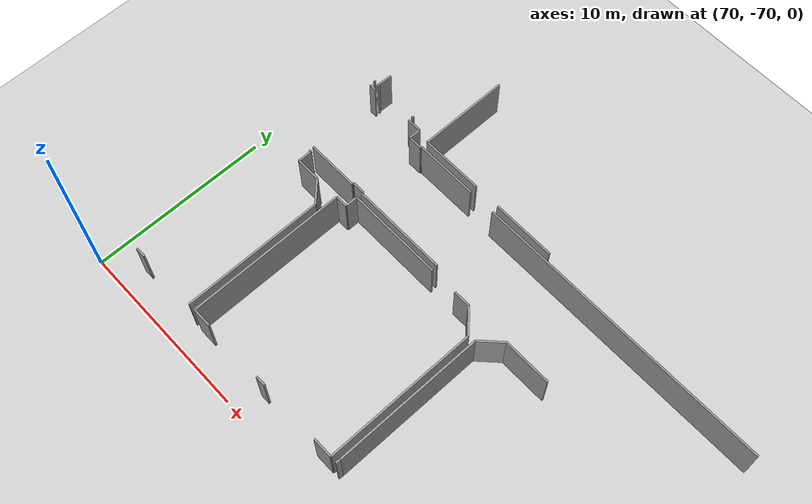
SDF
<sdf version="1.6">
 <world name="default">
  <model name="ground_plane">
   <static>1</static>
   <link name="link">
    <collision name="collision">
     <geometry><plane><normal>0 0 1</normal><size>100 100</size></plane></geometry>
     <surface><friction><ode><mu>100</mu><mu2>50</mu2></ode></friction></surface>
    </collision>
    <visual name="visual">
     <cast_shadows>0</cast_shadows>
     <geometry><plane><normal>0 0 1</normal><size>100 100</size></plane></geometry>
     <material>
      <script><uri>file://media/materials/scripts/gazebo.material</uri><name>Gazebo/Grey</name></script>
     </material>
    </visual>
   </link>
  </model>
  <model name="0510035520_A_40_1_103">
   <static>1</static>
   <link name="Wall_983">
    <collision name="Wall_983_Collision">
     <geometry><box><size>0.114466278767 0.1 2.5</size></box></geometry>
     <pose>0.0572331393836 0 1.25 0 0 0</pose>
    </collision>
    <visual name="Wall_983_Visual">
     <pose>0.0572331393836 0 1.25 0 0 0</pose>
     <geometry><box><size>0.114466278767 0.1 2.5</size></box></geometry>
     <material>
      <script><uri>file://media/materials/scripts/gazebo.material</uri><name>Gazebo/Grey</name></script>
      <ambient>1 1 1 1</ambient>
     </material>
    </visual>
    <pose>185.551106909 -127.543860762 0 0 0 0.0</pose>
   </link>
   <link name="Wall_984">
    <collision name="Wall_984_Collision">
     <geometry><box><size>0.788319871067 0.1 2.5</size></box></geometry>
     <pose>0.394159935533 0 1.25 0 0 0</pose>
    </collision>
    <visual name="Wall_984_Visual">
     <pose>0.394159935533 0 1.25 0 0 0</pose>
     <geometry><box><size>0.788319871067 0.1 2.5</size></box></geometry>
     <material>
      <script><uri>file://media/materials/scripts/gazebo.material</uri><name>Gazebo/Grey</name></script>
      <ambient>1 1 1 1</ambient>
     </material>
    </visual>
    <pose>185.665573188 -127.543860762 0 0 0 -1.57079632679</pose>
   </link>
   <link name="Wall_985">
    <collision name="Wall_985_Collision">
     <geometry><box><size>1.38349375956 0.1 2.5</size></box></geometry>
     <pose>0.691746879779 0 1.25 0 0 0</pose>
    </collision>
    <visual name="Wall_985_Visual">
     <pose>0.691746879779 0 1.25 0 0 0</pose>
     <geometry><box><size>1.38349375956 0.1 2.5</size></box></geometry>
     <material>
      <script><uri>file://media/materials/scripts/gazebo.material</uri><name>Gazebo/Grey</name></script>
      <ambient>1 1 1 1</ambient>
     </material>
    </visual>
    <pose>185.665573188 -128.332180633 0 0 0 0.0</pose>
   </link>
   <link name="Wall_986">
    <collision name="Wall_986_Collision">
     <geometry><box><size>1.47938921712 0.1 2.5</size></box></geometry>
     <pose>0.739694608561 0 1.25 0 0 0</pose>
    </collision>
    <visual name="Wall_986_Visual">
     <pose>0.739694608561 0 1.25 0 0 0</pose>
     <geometry><box><size>1.47938921712 0.1 2.5</size></box></geometry>
     <material>
      <script><uri>file://media/materials/scripts/gazebo.material</uri><name>Gazebo/Grey</name></script>
      <ambient>1 1 1 1</ambient>
     </material>
    </visual>
    <pose>187.049066948 -128.332180633 0 0 0 -0.778240697367</pose>
   </link>
   <link name="Wall_987">
    <collision name="Wall_987_Collision">
     <geometry><box><size>7.86593993693 0.1 2.5</size></box></geometry>
     <pose>3.93296996846 0 1.25 0 0 0</pose>
    </collision>
    <visual name="Wall_987_Visual">
     <pose>3.93296996846 0 1.25 0 0 0</pose>
     <geometry><box><size>7.86593993693 0.1 2.5</size></box></geometry>
     <material>
      <script><uri>file://media/materials/scripts/gazebo.material</uri><name>Gazebo/Grey</name></script>
      <ambient>1 1 1 1</ambient>
     </material>
    </visual>
    <pose>188.102613562 -129.370752724 0 0 0 -1.57079632679</pose>
   </link>
   <link name="Wall_988">
    <collision name="Wall_988_Collision">
     <geometry><box><size>0.578168920248 0.1 2.5</size></box></geometry>
     <pose>0.289084460124 0 1.25 0 0 0</pose>
    </collision>
    <visual name="Wall_988_Visual">
     <pose>0.289084460124 0 1.25 0 0 0</pose>
     <geometry><box><size>0.578168920248 0.1 2.5</size></box></geometry>
     <material>
      <script><uri>file://media/materials/scripts/gazebo.material</uri><name>Gazebo/Grey</name></script>
      <ambient>1 1 1 1</ambient>
     </material>
    </visual>
    <pose>184.661772451 -137.236692661 0 0 0 3.14159265359</pose>
   </link>
   <link name="Wall_990">
    <collision name="Wall_990_Collision">
     <geometry><box><size>0.692635199015 0.1 2.5</size></box></geometry>
     <pose>0.346317599508 0 1.25 0 0 0</pose>
    </collision>
    <visual name="Wall_990_Visual">
     <pose>0.346317599508 0 1.25 0 0 0</pose>
     <geometry><box><size>0.692635199015 0.1 2.5</size></box></geometry>
     <material>
      <script><uri>file://media/materials/scripts/gazebo.material</uri><name>Gazebo/Grey</name></script>
      <ambient>1 1 1 1</ambient>
     </material>
    </visual>
    <pose>188.497027303 -128.311114777 0 0 0 0.0</pose>
   </link>
   <link name="Wall_991">
    <collision name="Wall_991_Collision">
     <geometry><box><size>0.698218919931 0.1 2.5</size></box></geometry>
     <pose>0.349109459965 0 1.25 0 0 0</pose>
    </collision>
    <visual name="Wall_991_Visual">
     <pose>0.349109459965 0 1.25 0 0 0</pose>
     <geometry><box><size>0.698218919931 0.1 2.5</size></box></geometry>
     <material>
      <script><uri>file://media/materials/scripts/gazebo.material</uri><name>Gazebo/Grey</name></script>
      <ambient>1 1 1 1</ambient>
     </material>
    </visual>
    <pose>189.189662502 -128.311114777 0 0 0 1.57079632679</pose>
   </link>
   <link name="Wall_992">
    <collision name="Wall_992_Collision">
     <geometry><box><size>5.43346806175 0.1 2.5</size></box></geometry>
     <pose>2.71673403088 0 1.25 0 0 0</pose>
    </collision>
    <visual name="Wall_992_Visual">
     <pose>2.71673403088 0 1.25 0 0 0</pose>
     <geometry><box><size>5.43346806175 0.1 2.5</size></box></geometry>
     <material>
      <script><uri>file://media/materials/scripts/gazebo.material</uri><name>Gazebo/Grey</name></script>
      <ambient>1 1 1 1</ambient>
     </material>
    </visual>
    <pose>189.189662502 -127.612895857 0 0 0 0.0</pose>
   </link>
   <link name="Wall_993">
    <collision name="Wall_993_Collision">
     <geometry><box><size>0.959638580973 0.1 2.5</size></box></geometry>
     <pose>0.479819290487 0 1.25 0 0 0</pose>
    </collision>
    <visual name="Wall_993_Visual">
     <pose>0.479819290487 0 1.25 0 0 0</pose>
     <geometry><box><size>0.959638580973 0.1 2.5</size></box></geometry>
     <material>
      <script><uri>file://media/materials/scripts/gazebo.material</uri><name>Gazebo/Grey</name></script>
      <ambient>1 1 1 1</ambient>
     </material>
    </visual>
    <pose>196.16855223 -127.612895857 0 0 0 0.0</pose>
   </link>
   <link name="Wall_994">
    <collision name="Wall_994_Collision">
     <geometry><box><size>1.56023891634 0.1 2.5</size></box></geometry>
     <pose>0.780119458172 0 1.25 0 0 0</pose>
    </collision>
    <visual name="Wall_994_Visual">
     <pose>0.780119458172 0 1.25 0 0 0</pose>
     <geometry><box><size>1.56023891634 0.1 2.5</size></box></geometry>
     <material>
      <script><uri>file://media/materials/scripts/gazebo.material</uri><name>Gazebo/Grey</name></script>
      <ambient>1 1 1 1</ambient>
     </material>
    </visual>
    <pose>197.128190811 -127.612895857 0 0 0 -0.798166364011</pose>
   </link>
   <link name="Wall_995">
    <collision name="Wall_995_Collision">
     <geometry><box><size>8.47938782114 0.1 2.5</size></box></geometry>
     <pose>4.23969391057 0 1.25 0 0 0</pose>
    </collision>
    <visual name="Wall_995_Visual">
     <pose>4.23969391057 0 1.25 0 0 0</pose>
     <geometry><box><size>8.47938782114 0.1 2.5</size></box></geometry>
     <material>
      <script><uri>file://media/materials/scripts/gazebo.material</uri><name>Gazebo/Grey</name></script>
      <ambient>1 1 1 1</ambient>
     </material>
    </visual>
    <pose>198.217270195 -128.730147651 0 0 0 -1.57079632679</pose>
   </link>
   <link name="Wall_996">
    <collision name="Wall_996_Collision">
     <geometry><box><size>1.11192187867 0.1 2.5</size></box></geometry>
     <pose>0.555960939334 0 1.25 0 0 0</pose>
    </collision>
    <visual name="Wall_996_Visual">
     <pose>0.555960939334 0 1.25 0 0 0</pose>
     <geometry><box><size>1.11192187867 0.1 2.5</size></box></geometry>
     <material>
      <script><uri>file://media/materials/scripts/gazebo.material</uri><name>Gazebo/Grey</name></script>
      <ambient>1 1 1 1</ambient>
     </material>
    </visual>
    <pose>198.217270195 -137.209535472 0 0 0 3.14159265359</pose>
   </link>
   <link name="Wall_997">
    <collision name="Wall_997_Collision">
     <geometry><box><size>0.561671562998 0.1 2.5</size></box></geometry>
     <pose>0.280835781499 0 1.25 0 0 0</pose>
    </collision>
    <visual name="Wall_997_Visual">
     <pose>0.280835781499 0 1.25 0 0 0</pose>
     <geometry><box><size>0.561671562998 0.1 2.5</size></box></geometry>
     <material>
      <script><uri>file://media/materials/scripts/gazebo.material</uri><name>Gazebo/Grey</name></script>
      <ambient>1 1 1 1</ambient>
     </material>
    </visual>
    <pose>193.628974435 -137.209535472 0 0 0 3.14159265359</pose>
   </link>
   <link name="Wall_998">
    <collision name="Wall_998_Collision">
     <geometry><box><size>1.07918096966 0.1 2.5</size></box></geometry>
     <pose>0.539590484832 0 1.25 0 0 0</pose>
    </collision>
    <visual name="Wall_998_Visual">
     <pose>0.539590484832 0 1.25 0 0 0</pose>
     <geometry><box><size>1.07918096966 0.1 2.5</size></box></geometry>
     <material>
      <script><uri>file://media/materials/scripts/gazebo.material</uri><name>Gazebo/Grey</name></script>
      <ambient>1 1 1 1</ambient>
     </material>
    </visual>
    <pose>189.591690408 -137.209535472 0 0 0 3.14159265359</pose>
   </link>
   <link name="Wall_999">
    <collision name="Wall_999_Collision">
     <geometry><box><size>8.89843416378 0.1 2.5</size></box></geometry>
     <pose>4.44921708189 0 1.25 0 0 0</pose>
    </collision>
    <visual name="Wall_999_Visual">
     <pose>4.44921708189 0 1.25 0 0 0</pose>
     <geometry><box><size>8.89843416378 0.1 2.5</size></box></geometry>
     <material>
      <script><uri>file://media/materials/scripts/gazebo.material</uri><name>Gazebo/Grey</name></script>
      <ambient>1 1 1 1</ambient>
     </material>
    </visual>
    <pose>188.512509438 -137.209535472 0 0 0 1.57253619954</pose>
   </link>
   <link name="Wall_1000">
    <collision name="Wall_1000_Collision">
     <geometry><box><size>8.35197746207 0.1 2.5</size></box></geometry>
     <pose>4.17598873104 0 1.25 0 0 0</pose>
    </collision>
    <visual name="Wall_1000_Visual">
     <pose>4.17598873104 0 1.25 0 0 0</pose>
     <geometry><box><size>8.35197746207 0.1 2.5</size></box></geometry>
     <material>
      <script><uri>file://media/materials/scripts/gazebo.material</uri><name>Gazebo/Grey</name></script>
      <ambient>1 1 1 1</ambient>
     </material>
    </visual>
    <pose>198.599755078 -136.995831245 0 0 0 1.57079632679</pose>
   </link>
   <link name="Wall_1001">
    <collision name="Wall_1001_Collision">
     <geometry><box><size>1.46091213028 0.1 2.5</size></box></geometry>
     <pose>0.730456065141 0 1.25 0 0 0</pose>
    </collision>
    <visual name="Wall_1001_Visual">
     <pose>0.730456065141 0 1.25 0 0 0</pose>
     <geometry><box><size>1.46091213028 0.1 2.5</size></box></geometry>
     <material>
      <script><uri>file://media/materials/scripts/gazebo.material</uri><name>Gazebo/Grey</name></script>
      <ambient>1 1 1 1</ambient>
     </material>
    </visual>
    <pose>198.599755078 -128.643853783 0 0 0 0.767830244949</pose>
   </link>
   <link name="Wall_1002">
    <collision name="Wall_1002_Collision">
     <geometry><box><size>2.66470390416 0.1 2.5</size></box></geometry>
     <pose>1.33235195208 0 1.25 0 0 0</pose>
    </collision>
    <visual name="Wall_1002_Visual">
     <pose>1.33235195208 0 1.25 0 0 0</pose>
     <geometry><box><size>2.66470390416 0.1 2.5</size></box></geometry>
     <material>
      <script><uri>file://media/materials/scripts/gazebo.material</uri><name>Gazebo/Grey</name></script>
      <ambient>1 1 1 1</ambient>
     </material>
    </visual>
    <pose>199.650763637 -127.629139409 0 0 0 0.0</pose>
   </link>
   <link name="Wall_1006">
    <collision name="Wall_1006_Collision">
     <geometry><box><size>0.246473364806 0.1 2.5</size></box></geometry>
     <pose>0.123236682403 0 1.25 0 0 0</pose>
    </collision>
    <visual name="Wall_1006_Visual">
     <pose>0.123236682403 0 1.25 0 0 0</pose>
     <geometry><box><size>0.246473364806 0.1 2.5</size></box></geometry>
     <material>
      <script><uri>file://media/materials/scripts/gazebo.material</uri><name>Gazebo/Grey</name></script>
      <ambient>1 1 1 1</ambient>
     </material>
    </visual>
    <pose>198.583511526 -137.241768771 0 0 0 1.50484464352</pose>
   </link>
   <link name="Wall_1039">
    <collision name="Wall_1039_Collision">
     <geometry><box><size>5.08626214301 0.1 2.5</size></box></geometry>
     <pose>2.5431310715 0 1.25 0 0 0</pose>
    </collision>
    <visual name="Wall_1039_Visual">
     <pose>2.5431310715 0 1.25 0 0 0</pose>
     <geometry><box><size>5.08626214301 0.1 2.5</size></box></geometry>
     <material>
      <script><uri>file://media/materials/scripts/gazebo.material</uri><name>Gazebo/Grey</name></script>
      <ambient>1 1 1 1</ambient>
     </material>
    </visual>
    <pose>189.239408379 -122.886022297 0 0 0 1.57079632679</pose>
   </link>
   <link name="Wall_1044">
    <collision name="Wall_1044_Collision">
     <geometry><box><size>3.54464755934 0.1 2.5</size></box></geometry>
     <pose>1.77232377967 0 1.25 0 0 0</pose>
    </collision>
    <visual name="Wall_1044_Visual">
     <pose>1.77232377967 0 1.25 0 0 0</pose>
     <geometry><box><size>3.54464755934 0.1 2.5</size></box></geometry>
     <material>
      <script><uri>file://media/materials/scripts/gazebo.material</uri><name>Gazebo/Grey</name></script>
      <ambient>1 1 1 1</ambient>
     </material>
    </visual>
    <pose>197.810166179 -122.882976631 0 0 0 3.14159265359</pose>
   </link>
   <link name="Wall_1045">
    <collision name="Wall_1045_Collision">
     <geometry><box><size>3.52662868426 0.1 2.5</size></box></geometry>
     <pose>1.76331434213 0 1.25 0 0 0</pose>
    </collision>
    <visual name="Wall_1045_Visual">
     <pose>1.76331434213 0 1.25 0 0 0</pose>
     <geometry><box><size>3.52662868426 0.1 2.5</size></box></geometry>
     <material>
      <script><uri>file://media/materials/scripts/gazebo.material</uri><name>Gazebo/Grey</name></script>
      <ambient>1 1 1 1</ambient>
     </material>
    </visual>
    <pose>192.766035749 -122.882976631 0 0 0 -3.1407290338</pose>
   </link>
   <link name="Wall_1048">
    <collision name="Wall_1048_Collision">
     <geometry><box><size>0.130709830521 0.1 2.5</size></box></geometry>
     <pose>0.0653549152607 0 1.25 0 0 0</pose>
    </collision>
    <visual name="Wall_1048_Visual">
     <pose>0.0653549152607 0 1.25 0 0 0</pose>
     <geometry><box><size>0.130709830521 0.1 2.5</size></box></geometry>
     <material>
      <script><uri>file://media/materials/scripts/gazebo.material</uri><name>Gazebo/Grey</name></script>
      <ambient>1 1 1 1</ambient>
     </material>
    </visual>
    <pose>187.722159123 -122.413944074 0 0 0 3.14159265359</pose>
   </link>
   <link name="Wall_1049">
    <collision name="Wall_1049_Collision">
     <geometry><box><size>0.119288583194 0.1 2.5</size></box></geometry>
     <pose>0.0596442915971 0 1.25 0 0 0</pose>
    </collision>
    <visual name="Wall_1049_Visual">
     <pose>0.0596442915971 0 1.25 0 0 0</pose>
     <geometry><box><size>0.119288583194 0.1 2.5</size></box></geometry>
     <material>
      <script><uri>file://media/materials/scripts/gazebo.material</uri><name>Gazebo/Grey</name></script>
      <ambient>1 1 1 1</ambient>
     </material>
    </visual>
    <pose>185.112277206 -122.413944074 0 0 0 3.14159265359</pose>
   </link>
   <link name="Wall_1050">
    <collision name="Wall_1050_Collision">
     <geometry><box><size>0.881147474458 0.1 2.5</size></box></geometry>
     <pose>0.440573737229 0 1.25 0 0 0</pose>
    </collision>
    <visual name="Wall_1050_Visual">
     <pose>0.440573737229 0 1.25 0 0 0</pose>
     <geometry><box><size>0.881147474458 0.1 2.5</size></box></geometry>
     <material>
      <script><uri>file://media/materials/scripts/gazebo.material</uri><name>Gazebo/Grey</name></script>
      <ambient>1 1 1 1</ambient>
     </material>
    </visual>
    <pose>184.992988623 -122.413944074 0 0 0 1.53910665084</pose>
   </link>
   <link name="Wall_1055">
    <collision name="Wall_1055_Collision">
     <geometry><box><size>0.0939080335785 0.1 2.5</size></box></geometry>
     <pose>0.0469540167892 0 1.25 0 0 0</pose>
    </collision>
    <visual name="Wall_1055_Visual">
     <pose>0.0469540167892 0 1.25 0 0 0</pose>
     <geometry><box><size>0.0939080335785 0.1 2.5</size></box></geometry>
     <material>
      <script><uri>file://media/materials/scripts/gazebo.material</uri><name>Gazebo/Grey</name></script>
      <ambient>1 1 1 1</ambient>
     </material>
    </visual>
    <pose>184.760756594 -122.368005279 0 0 0 3.14159265359</pose>
   </link>
   <link name="Wall_1090">
    <collision name="Wall_1090_Collision">
     <geometry><box><size>0.421317123622 0.1 2.5</size></box></geometry>
     <pose>0.210658561811 0 1.25 0 0 0</pose>
    </collision>
    <visual name="Wall_1090_Visual">
     <pose>0.210658561811 0 1.25 0 0 0</pose>
     <geometry><box><size>0.421317123622 0.1 2.5</size></box></geometry>
     <material>
      <script><uri>file://media/materials/scripts/gazebo.material</uri><name>Gazebo/Grey</name></script>
      <ambient>1 1 1 1</ambient>
     </material>
    </visual>
    <pose>184.705680802 -122.686023566 0 0 0 0.0</pose>
   </link>
   <link name="Wall_1091">
    <collision name="Wall_1091_Collision">
     <geometry><box><size>0.815477059156 0.1 2.5</size></box></geometry>
     <pose>0.407738529578 0 1.25 0 0 0</pose>
    </collision>
    <visual name="Wall_1091_Visual">
     <pose>0.407738529578 0 1.25 0 0 0</pose>
     <geometry><box><size>0.815477059156 0.1 2.5</size></box></geometry>
     <material>
      <script><uri>file://media/materials/scripts/gazebo.material</uri><name>Gazebo/Grey</name></script>
      <ambient>1 1 1 1</ambient>
     </material>
    </visual>
    <pose>187.640433754 -122.686023566 0 0 0 0.0</pose>
   </link>
   <link name="Wall_1092">
    <collision name="Wall_1092_Collision">
     <geometry><box><size>0.673345981307 0.1 2.5</size></box></geometry>
     <pose>0.336672990654 0 1.25 0 0 0</pose>
    </collision>
    <visual name="Wall_1092_Visual">
     <pose>0.336672990654 0 1.25 0 0 0</pose>
     <geometry><box><size>0.673345981307 0.1 2.5</size></box></geometry>
     <material>
      <script><uri>file://media/materials/scripts/gazebo.material</uri><name>Gazebo/Grey</name></script>
      <ambient>1 1 1 1</ambient>
     </material>
    </visual>
    <pose>188.455910813 -122.686023566 0 0 0 -1.57079632679</pose>
   </link>
   <link name="Wall_1093">
    <collision name="Wall_1093_Collision">
     <geometry><box><size>0.790604120532 0.1 2.5</size></box></geometry>
     <pose>0.395302060266 0 1.25 0 0 0</pose>
    </collision>
    <visual name="Wall_1093_Visual">
     <pose>0.395302060266 0 1.25 0 0 0</pose>
     <geometry><box><size>0.790604120532 0.1 2.5</size></box></geometry>
     <material>
      <script><uri>file://media/materials/scripts/gazebo.material</uri><name>Gazebo/Grey</name></script>
      <ambient>1 1 1 1</ambient>
     </material>
    </visual>
    <pose>188.455910813 -123.359369547 0 0 0 0.0</pose>
   </link>
   <link name="Wall_1094">
    <collision name="Wall_1094_Collision">
     <geometry><box><size>0.069035094955 0.1 2.5</size></box></geometry>
     <pose>0.0345175474775 0 1.25 0 0 0</pose>
    </collision>
    <visual name="Wall_1094_Visual">
     <pose>0.0345175474775 0 1.25 0 0 0</pose>
     <geometry><box><size>0.069035094955 0.1 2.5</size></box></geometry>
     <material>
      <script><uri>file://media/materials/scripts/gazebo.material</uri><name>Gazebo/Grey</name></script>
      <ambient>1 1 1 1</ambient>
     </material>
    </visual>
    <pose>189.246514933 -123.359369547 0 0 0 1.57079632679</pose>
   </link>
   <link name="Wall_1095">
    <collision name="Wall_1095_Collision">
     <geometry><box><size>3.56114491659 0.1 2.5</size></box></geometry>
     <pose>1.7805724583 0 1.25 0 0 0</pose>
    </collision>
    <visual name="Wall_1095_Visual">
     <pose>1.7805724583 0 1.25 0 0 0</pose>
     <geometry><box><size>3.56114491659 0.1 2.5</size></box></geometry>
     <material>
      <script><uri>file://media/materials/scripts/gazebo.material</uri><name>Gazebo/Grey</name></script>
      <ambient>1 1 1 1</ambient>
     </material>
    </visual>
    <pose>189.246514933 -123.290334452 0 0 0 0.0</pose>
   </link>
   <link name="Wall_1096">
    <collision name="Wall_1096_Collision">
     <geometry><box><size>16.8339033382 0.1 2.5</size></box></geometry>
     <pose>8.41695166909 0 1.25 0 0 0</pose>
    </collision>
    <visual name="Wall_1096_Visual">
     <pose>8.41695166909 0 1.25 0 0 0</pose>
     <geometry><box><size>16.8339033382 0.1 2.5</size></box></geometry>
     <material>
      <script><uri>file://media/materials/scripts/gazebo.material</uri><name>Gazebo/Grey</name></script>
      <ambient>1 1 1 1</ambient>
     </material>
    </visual>
    <pose>194.301559 -123.290334452 0 0 0 0.0</pose>
   </link>
   <link name="Wall_1104">
    <collision name="Wall_1104_Collision">
     <geometry><box><size>5.40428042969 0.1 2.5</size></box></geometry>
     <pose>2.70214021485 0 1.25 0 0 0</pose>
    </collision>
    <visual name="Wall_1104_Visual">
     <pose>2.70214021485 0 1.25 0 0 0</pose>
     <geometry><box><size>5.40428042969 0.1 2.5</size></box></geometry>
     <material>
      <script><uri>file://media/materials/scripts/gazebo.material</uri><name>Gazebo/Grey</name></script>
      <ambient>1 1 1 1</ambient>
     </material>
    </visual>
    <pose>194.589120627 -127.280156852 0 0 0 3.14159265359</pose>
   </link>
   <link name="Wall_1105">
    <collision name="Wall_1105_Collision">
     <geometry><box><size>0.0954308665554 0.1 2.5</size></box></geometry>
     <pose>0.0477154332777 0 1.25 0 0 0</pose>
    </collision>
    <visual name="Wall_1105_Visual">
     <pose>0.0477154332777 0 1.25 0 0 0</pose>
     <geometry><box><size>0.0954308665554 0.1 2.5</size></box></geometry>
     <material>
      <script><uri>file://media/materials/scripts/gazebo.material</uri><name>Gazebo/Grey</name></script>
      <ambient>1 1 1 1</ambient>
     </material>
    </visual>
    <pose>189.184840198 -127.280156852 0 0 0 1.57079632679</pose>
   </link>
   <link name="Wall_1106">
    <collision name="Wall_1106_Collision">
     <geometry><box><size>0.685528645123 0.1 2.5</size></box></geometry>
     <pose>0.342764322561 0 1.25 0 0 0</pose>
    </collision>
    <visual name="Wall_1106_Visual">
     <pose>0.342764322561 0 1.25 0 0 0</pose>
     <geometry><box><size>0.685528645123 0.1 2.5</size></box></geometry>
     <material>
      <script><uri>file://media/materials/scripts/gazebo.material</uri><name>Gazebo/Grey</name></script>
      <ambient>1 1 1 1</ambient>
     </material>
    </visual>
    <pose>189.184840198 -127.184725985 0 0 0 3.14159265359</pose>
   </link>
   <link name="Wall_1107">
    <collision name="Wall_1107_Collision">
     <geometry><box><size>0.0939080335785 0.1 2.5</size></box></geometry>
     <pose>0.0469540167892 0 1.25 0 0 0</pose>
    </collision>
    <visual name="Wall_1107_Visual">
     <pose>0.0469540167892 0 1.25 0 0 0</pose>
     <geometry><box><size>0.0939080335785 0.1 2.5</size></box></geometry>
     <material>
      <script><uri>file://media/materials/scripts/gazebo.material</uri><name>Gazebo/Grey</name></script>
      <ambient>1 1 1 1</ambient>
     </material>
    </visual>
    <pose>188.499311553 -127.184725985 0 0 0 -1.57079632679</pose>
   </link>
   <link name="Wall_1108">
    <collision name="Wall_1108_Collision">
     <geometry><box><size>2.95987969619 0.1 2.5</size></box></geometry>
     <pose>1.4799398481 0 1.25 0 0 0</pose>
    </collision>
    <visual name="Wall_1108_Visual">
     <pose>1.4799398481 0 1.25 0 0 0</pose>
     <geometry><box><size>2.95987969619 0.1 2.5</size></box></geometry>
     <material>
      <script><uri>file://media/materials/scripts/gazebo.material</uri><name>Gazebo/Grey</name></script>
      <ambient>1 1 1 1</ambient>
     </material>
    </visual>
    <pose>188.499311553 -127.278634019 0 0 0 3.14159265359</pose>
   </link>
   <pose>-112.2 68.6448144365 0 0 0 0</pose>
  </model>
 </world>
</sdf>
